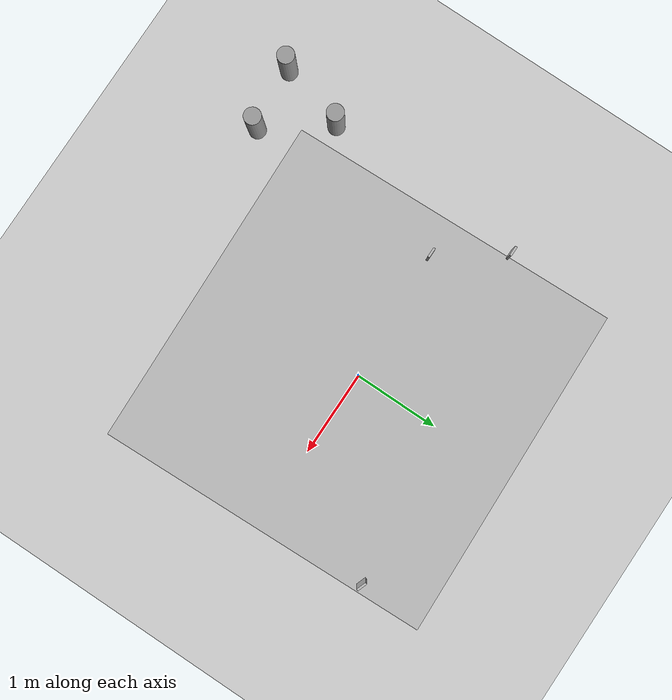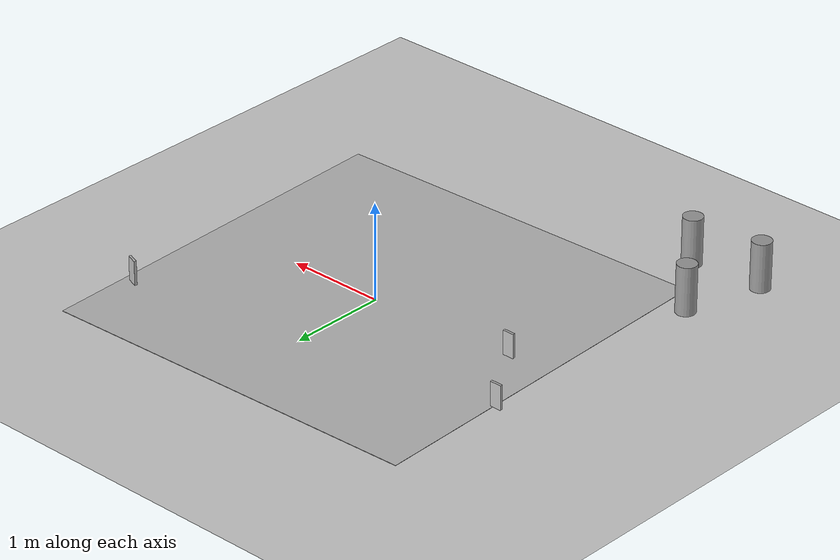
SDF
<sdf version="1.6">
 <world name="default">
  <include><uri>model://sun</uri></include>
  <scene><shadows>false</shadows></scene>
  <physics type="ode">
   <real_time_update_rate>1000.0</real_time_update_rate>
   <max_step_size>0.001</max_step_size>
   <real_time_factor>1</real_time_factor>
   <ode>
    <solver>
     <type>quick</type>
     <iters>150</iters>
     <precon_iters>0</precon_iters>
     <sor>1.400000</sor>
     <use_dynamic_moi_rescaling>1</use_dynamic_moi_rescaling>
    </solver>
    <constraints>
     <cfm>0.00001</cfm>
     <erp>0.2</erp>
     <contact_max_correcting_vel>2000.000000</contact_max_correcting_vel>
     <contact_surface_layer>0.01000</contact_surface_layer>
    </constraints>
   </ode>
  </physics>
  <include><uri>model://turtlebot3_autorace/course</uri><pose>0 0 0 0 0 -1.54</pose></include>
  <include><uri>model://turtlebot3_autorace/ground</uri><pose>0 0 -0.1 0 0 0</pose></include>
  <include><uri>model://turtlebot3_autorace/lights</uri></include>
  <include>
   <uri>model://turtlebot3_autorace/traffic_parking</uri>
   <pose>1.84 1.27 0.13 0 0 -0.356</pose>
  </include>
  <include><uri>model://turtlebot3_autorace/traffic_tunnel</uri><pose>-1.544 -0.08 0.125 0 0 0</pose></include>
  <include><uri>model://turtlebot3_autorace/traffic_stop</uri><pose>-2.05 0.65 0.125 0 -0 0</pose></include>
  <include><uri>model://turtlebot3_autorace/tunnel_obstacles</uri></include>
 </world>
</sdf>

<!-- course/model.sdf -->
<sdf version="1.6">
  <model name="course">
    <static>true</static>
    <link name="course_link">
      <collision name="course_collision">
        <geometry>
          <plane>
            <normal>0 0 1</normal>
            <size>4 4</size>
          </plane>
        </geometry>
        <surface>
          <friction>
            <ode>
              <mu>100</mu>
              <mu2>50</mu2>
            </ode>
          </friction>
        </surface>
      </collision>
      <visual name="course_visual">
        <cast_shadows>false</cast_shadows>
        <geometry>
	        <plane>
            <normal>0 0 1</normal>
            <size>4 4</size>
          </plane>
        </geometry>
	      <material>
          <script>
            <uri>model://turtlebot3_autorace/course/materials/scripts</uri>
            <uri>model://turtlebot3_autorace/course/materials/textures</uri>
            <name>course</name>
          </script>
        </material>
      </visual>
    </link>
  </model>
</sdf>

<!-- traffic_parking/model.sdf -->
<sdf version="1.6">
  <model name="traffic_parking">
    <static>true</static>
    <link name="box">
      <pose>0 0 0 0 0 0</pose>
      <collision name="collision">
        <geometry>
          <box>
            <size>0.12 0.025 0.25</size>
          </box>
        </geometry>
      </collision>
      <visual name="visual">
        <geometry>
          <box>
            <size>0.12 0.025 0.25</size>
          </box>
        </geometry>
        <material>
          <script>
            <uri>model://turtlebot3_autorace/traffic_parking/materials/scripts</uri>
            <uri>model://turtlebot3_autorace/traffic_parking/materials/textures</uri>
            <name>traffic_parking</name>
          </script>
        </material>
      </visual>
    </link>
  </model>
</sdf>

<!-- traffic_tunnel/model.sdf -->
<sdf version="1.6">
  <model name="traffic_tunnel">
    <pose>0 0 0.125 0 0 0</pose>
    <link name="box">
      <pose>0 0 0 0 0 0</pose>
      <collision name="collision">
        <geometry>
          <box>
            <size>0.12 0.025 0.25</size>
          </box>
        </geometry>
      </collision>
      <visual name="visual">
        <geometry>
          <box>
            <size>0.12 0.025 0.25</size>
          </box>
        </geometry>
        <material>
          <script>
            <uri>model://traffic_tunnel/materials/scripts</uri>
            <uri>model://traffic_tunnel/materials/textures</uri>
            <name>traffic_tunnel</name>
          </script>
        </material>
      </visual>
    </link>
  </model>
</sdf>

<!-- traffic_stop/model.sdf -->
<sdf version="1.6">
  <model name="traffic_stop">
    <static>true</static>
    <link name="box">
      <pose>0 0 0 0 0 0</pose>
      <collision name="collision">
        <geometry>
          <box>
            <size>0.12 0.025 0.25</size>
          </box>
        </geometry>
      </collision>
      <visual name="visual">
        <geometry>
          <box>
            <size>0.12 0.025 0.25</size>
          </box>
        </geometry>
        <material>
          <script>
            <uri>model://turtlebot3_autorace/traffic_stop/materials/scripts</uri>
            <uri>model://turtlebot3_autorace/traffic_stop/materials/textures</uri>
            <name>traffic_stop</name>
          </script>
        </material>
      </visual>
    </link>
  </model>
</sdf>

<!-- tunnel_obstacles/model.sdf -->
<sdf version="1.5">
  <model name='tunnel_occ_2_1'>
    <pose frame=''>-1.04145 -1.12671 0 0 -0 0</pose>
    <link name='link_0_clone_clone'>
      <pose frame=''>-0.61823 -1.33874 0.25 0 -0 0</pose>
      <inertial>
        <mass>0.0416663</mass>
        <inertia>
          <ixx>0.00098188</ixx>
          <ixy>0</ixy>
          <ixz>0</ixz>
          <iyy>0.00098188</iyy>
          <iyz>0</iyz>
          <izz>0.00046751</izz>
        </inertia>
        <pose frame=''>0 0 0 0 -0 0</pose>
      </inertial>
      <self_collide>0</self_collide>
      <kinematic>0</kinematic>
      <gravity>1</gravity>
      <visual name='visual'>
        <pose frame=''>0 0 0 0 -0 0</pose>
        <geometry>
          <cylinder>
            <radius>0.1</radius>
            <length>0.5</length>
          </cylinder>
        </geometry>
        <material>
          <lighting>1</lighting>
          <script>
            <uri>file://media/materials/scripts/gazebo.material</uri>
            <name>Gazebo/Grey</name>
          </script>
          <ambient>0.3 0.3 0.3 1</ambient>
          <diffuse>0.7 0.7 0.7 1</diffuse>
          <specular>0.01 0.01 0.01 1</specular>
          <emissive>0 0 0 1</emissive>
          <shader type='pixel'>
            <normal_map>__default__</normal_map>
          </shader>
        </material>
        <cast_shadows>1</cast_shadows>
        <transparency>0</transparency>
      </visual>
      <collision name='collision'>
        <laser_retro>0</laser_retro>
        <max_contacts>10</max_contacts>
        <pose frame=''>0 0 0 0 -0 0</pose>
        <geometry>
          <cylinder>
            <radius>0.1</radius>
            <length>0.46418</length>
          </cylinder>
        </geometry>
        <surface>
          <friction>
            <ode>
              <mu>1</mu>
              <mu2>1</mu2>
              <fdir1>0 0 0</fdir1>
              <slip1>0</slip1>
              <slip2>0</slip2>
            </ode>
            <torsional>
              <coefficient>1</coefficient>
              <patch_radius>0</patch_radius>
              <surface_radius>0</surface_radius>
              <use_patch_radius>1</use_patch_radius>
              <ode>
                <slip>0</slip>
              </ode>
            </torsional>
          </friction>
          <bounce>
            <restitution_coefficient>0</restitution_coefficient>
            <threshold>1e+06</threshold>
          </bounce>
          <contact>
            <collide_without_contact>0</collide_without_contact>
            <collide_without_contact_bitmask>1</collide_without_contact_bitmask>
            <collide_bitmask>1</collide_bitmask>
            <ode>
              <soft_cfm>0</soft_cfm>
              <soft_erp>0.2</soft_erp>
              <kp>1e+13</kp>
              <kd>1</kd>
              <max_vel>0.01</max_vel>
              <min_depth>0</min_depth>
            </ode>
            <bullet>
              <split_impulse>1</split_impulse>
              <split_impulse_penetration_threshold>-0.01</split_impulse_penetration_threshold>
              <soft_cfm>0</soft_cfm>
              <soft_erp>0.2</soft_erp>
              <kp>1e+13</kp>
              <kd>1</kd>
            </bullet>
          </contact>
        </surface>
      </collision>
    </link>
    <link name='link_0_clone_clone_clone'>
      <pose frame=''>-1.36518 -1.41427 0.25 0 -0 0</pose>
      <inertial>
        <mass>0.0416663</mass>
        <inertia>
          <ixx>0.00098188</ixx>
          <ixy>0</ixy>
          <ixz>0</ixz>
          <iyy>0.00098188</iyy>
          <iyz>0</iyz>
          <izz>0.00046751</izz>
        </inertia>
        <pose frame=''>0 0 0 0 -0 0</pose>
      </inertial>
      <self_collide>0</self_collide>
      <kinematic>0</kinematic>
      <gravity>1</gravity>
      <visual name='visual'>
        <pose frame=''>0 0 0 0 -0 0</pose>
        <geometry>
          <cylinder>
            <radius>0.1</radius>
            <length>0.5</length>
          </cylinder>
        </geometry>
        <material>
          <lighting>1</lighting>
          <script>
            <uri>file://media/materials/scripts/gazebo.material</uri>
            <name>Gazebo/Grey</name>
          </script>
          <ambient>0.3 0.3 0.3 1</ambient>
          <diffuse>0.7 0.7 0.7 1</diffuse>
          <specular>0.01 0.01 0.01 1</specular>
          <emissive>0 0 0 1</emissive>
          <shader type='pixel'>
            <normal_map>__default__</normal_map>
          </shader>
        </material>
        <cast_shadows>1</cast_shadows>
        <transparency>0</transparency>
      </visual>
      <collision name='collision'>
        <laser_retro>0</laser_retro>
        <max_contacts>10</max_contacts>
        <pose frame=''>0 0 0 0 -0 0</pose>
        <geometry>
          <cylinder>
            <radius>0.1</radius>
            <length>0.46418</length>
          </cylinder>
        </geometry>
        <surface>
          <friction>
            <ode>
              <mu>1</mu>
              <mu2>1</mu2>
              <fdir1>0 0 0</fdir1>
              <slip1>0</slip1>
              <slip2>0</slip2>
            </ode>
            <torsional>
              <coefficient>1</coefficient>
              <patch_radius>0</patch_radius>
              <surface_radius>0</surface_radius>
              <use_patch_radius>1</use_patch_radius>
              <ode>
                <slip>0</slip>
              </ode>
            </torsional>
          </friction>
          <bounce>
            <restitution_coefficient>0</restitution_coefficient>
            <threshold>1e+06</threshold>
          </bounce>
          <contact>
            <collide_without_contact>0</collide_without_contact>
            <collide_without_contact_bitmask>1</collide_without_contact_bitmask>
            <collide_bitmask>1</collide_bitmask>
            <ode>
              <soft_cfm>0</soft_cfm>
              <soft_erp>0.2</soft_erp>
              <kp>1e+13</kp>
              <kd>1</kd>
              <max_vel>0.01</max_vel>
              <min_depth>0</min_depth>
            </ode>
            <bullet>
              <split_impulse>1</split_impulse>
              <split_impulse_penetration_threshold>-0.01</split_impulse_penetration_threshold>
              <soft_cfm>0</soft_cfm>
              <soft_erp>0.2</soft_erp>
              <kp>1e+13</kp>
              <kd>1</kd>
            </bullet>
          </contact>
        </surface>
      </collision>
    </link>
    <link name='link_0_clone_clone_clone_clone'>
      <pose frame=''>-1.14094 -0.627116 0.25 0 -0 0</pose>
      <inertial>
        <mass>0.0416663</mass>
        <inertia>
          <ixx>0.00098188</ixx>
          <ixy>0</ixy>
          <ixz>0</ixz>
          <iyy>0.00098188</iyy>
          <iyz>0</iyz>
          <izz>0.00046751</izz>
        </inertia>
        <pose frame=''>0 0 0 0 -0 0</pose>
      </inertial>
      <self_collide>0</self_collide>
      <kinematic>0</kinematic>
      <gravity>1</gravity>
      <visual name='visual'>
        <pose frame=''>0 0 0 0 -0 0</pose>
        <geometry>
          <cylinder>
            <radius>0.1</radius>
            <length>0.5</length>
          </cylinder>
        </geometry>
        <material>
          <lighting>1</lighting>
          <script>
            <uri>file://media/materials/scripts/gazebo.material</uri>
            <name>Gazebo/Grey</name>
          </script>
          <ambient>0.3 0.3 0.3 1</ambient>
          <diffuse>0.7 0.7 0.7 1</diffuse>
          <specular>0.01 0.01 0.01 1</specular>
          <emissive>0 0 0 1</emissive>
          <shader type='pixel'>
            <normal_map>__default__</normal_map>
          </shader>
        </material>
        <cast_shadows>1</cast_shadows>
        <transparency>0</transparency>
      </visual>
      <collision name='collision'>
        <laser_retro>0</laser_retro>
        <max_contacts>10</max_contacts>
        <pose frame=''>0 0 0 0 -0 0</pose>
        <geometry>
          <cylinder>
            <radius>0.1</radius>
            <length>0.46418</length>
          </cylinder>
        </geometry>
        <surface>
          <friction>
            <ode>
              <mu>1</mu>
              <mu2>1</mu2>
              <fdir1>0 0 0</fdir1>
              <slip1>0</slip1>
              <slip2>0</slip2>
            </ode>
            <torsional>
              <coefficient>1</coefficient>
              <patch_radius>0</patch_radius>
              <surface_radius>0</surface_radius>
              <use_patch_radius>1</use_patch_radius>
              <ode>
                <slip>0</slip>
              </ode>
            </torsional>
          </friction>
          <bounce>
            <restitution_coefficient>0</restitution_coefficient>
            <threshold>1e+06</threshold>
          </bounce>
          <contact>
            <collide_without_contact>0</collide_without_contact>
            <collide_without_contact_bitmask>1</collide_without_contact_bitmask>
            <collide_bitmask>1</collide_bitmask>
            <ode>
              <soft_cfm>0</soft_cfm>
              <soft_erp>0.2</soft_erp>
              <kp>1e+13</kp>
              <kd>1</kd>
              <max_vel>0.01</max_vel>
              <min_depth>0</min_depth>
            </ode>
            <bullet>
              <split_impulse>1</split_impulse>
              <split_impulse_penetration_threshold>-0.01</split_impulse_penetration_threshold>
              <soft_cfm>0</soft_cfm>
              <soft_erp>0.2</soft_erp>
              <kp>1e+13</kp>
              <kd>1</kd>
            </bullet>
          </contact>
        </surface>
      </collision>
    </link>
    <static>1</static>
    <allow_auto_disable>1</allow_auto_disable>
  </model>
</sdf>
